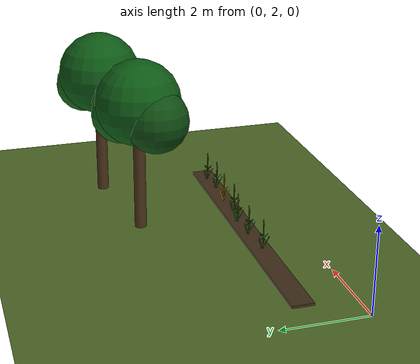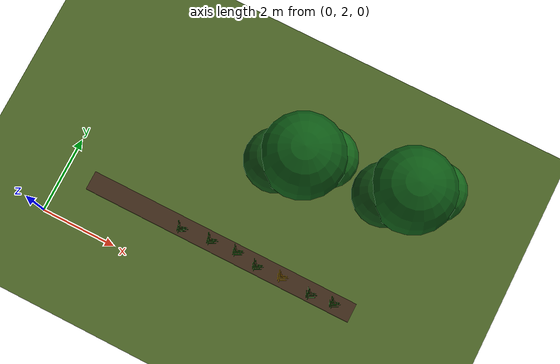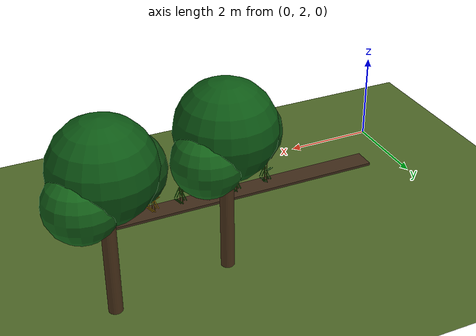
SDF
<sdf version="1.6">
 <world name="default">
  <model name="ground">
   <static>true</static>
   <link name="link">
    <collision name="col"><geometry><plane><normal>0 0 1</normal><size>40 40</size></plane></geometry></collision>
    <visual name="vis">
     <geometry><plane><normal>0 0 1</normal><size>40 40</size></plane></geometry>
     <material><ambient>0.30 0.40 0.15 1</ambient><diffuse>0.30 0.40 0.15 1</diffuse></material>
    </visual>
   </link>
  </model>
  <model name="bed_2b">
   <static>true</static>
   <pose>4.35 3.20 0.030 0 0 0.00</pose>
   <link name="link">
    <visual name="v">
     <geometry><box><size>7.30 0.50 0.060</size></box></geometry>
     <material><ambient>0.25 0.17 0.10 1</ambient><diffuse>0.25 0.17 0.10 1</diffuse></material>
    </visual>
   </link>
  </model>
  <model name="plant_34">
   <static>true</static>
   <pose>3.28 3.15 0 0 0 0</pose>
   <link name="link">
    <visual name="stem_0">
     <pose>0.000 0.000 0.320 0.000 0.000 0.000</pose>
     <geometry><cylinder><radius>0.01</radius><length>0.64</length></cylinder></geometry>
     <material><ambient>0.30 0.38 0.08 1</ambient><diffuse>0.30 0.38 0.08 1</diffuse></material>
    </visual>
    <visual name="leaf_0_0">
     <pose>0.055 0.045 0.130 0.000 0.700 0.150</pose>
     <geometry><cylinder><radius>0.009</radius><length>0.3</length></cylinder></geometry>
     <material><ambient>0.08 0.42 0.05 1</ambient><diffuse>0.08 0.42 0.05 1</diffuse></material>
    </visual>
    <visual name="leaf_0_1">
     <pose>-0.055 -0.045 0.230 0.000 -0.720 1.900</pose>
     <geometry><cylinder><radius>0.009</radius><length>0.28</length></cylinder></geometry>
     <material><ambient>0.08 0.42 0.05 1</ambient><diffuse>0.08 0.42 0.05 1</diffuse></material>
    </visual>
    <visual name="leaf_0_2">
     <pose>0.055 -0.045 0.320 0.000 0.780 3.700</pose>
     <geometry><cylinder><radius>0.009</radius><length>0.24</length></cylinder></geometry>
     <material><ambient>0.08 0.42 0.05 1</ambient><diffuse>0.08 0.42 0.05 1</diffuse></material>
    </visual>
    <visual name="leaf_0_3">
     <pose>-0.055 0.045 0.400 0.000 -0.800 5.200</pose>
     <geometry><cylinder><radius>0.009</radius><length>0.2</length></cylinder></geometry>
     <material><ambient>0.08 0.42 0.05 1</ambient><diffuse>0.08 0.42 0.05 1</diffuse></material>
    </visual>
    <visual name="stem_1">
     <pose>0.045 -0.025 0.265 0.000 0.000 0.000</pose>
     <geometry><cylinder><radius>0.008</radius><length>0.53</length></cylinder></geometry>
     <material><ambient>0.30 0.38 0.08 1</ambient><diffuse>0.30 0.38 0.08 1</diffuse></material>
    </visual>
    <visual name="leaf_1_0">
     <pose>0.100 0.020 0.130 0.000 0.700 0.150</pose>
     <geometry><cylinder><radius>0.009</radius><length>0.3</length></cylinder></geometry>
     <material><ambient>0.08 0.42 0.05 1</ambient><diffuse>0.08 0.42 0.05 1</diffuse></material>
    </visual>
    <visual name="leaf_1_1">
     <pose>-0.010 -0.070 0.230 0.000 -0.720 1.900</pose>
     <geometry><cylinder><radius>0.009</radius><length>0.28</length></cylinder></geometry>
     <material><ambient>0.08 0.42 0.05 1</ambient><diffuse>0.08 0.42 0.05 1</diffuse></material>
    </visual>
    <visual name="leaf_1_2">
     <pose>0.100 -0.070 0.320 0.000 0.780 3.700</pose>
     <geometry><cylinder><radius>0.009</radius><length>0.24</length></cylinder></geometry>
     <material><ambient>0.08 0.42 0.05 1</ambient><diffuse>0.08 0.42 0.05 1</diffuse></material>
    </visual>
    <visual name="leaf_1_3">
     <pose>-0.010 0.020 0.400 0.000 -0.800 5.200</pose>
     <geometry><cylinder><radius>0.009</radius><length>0.2</length></cylinder></geometry>
     <material><ambient>0.08 0.42 0.05 1</ambient><diffuse>0.08 0.42 0.05 1</diffuse></material>
    </visual>
    <visual name="ear_axis_0">
     <pose>0.000 0.000 0.715 0.000 0.000 0.000</pose>
     <geometry><cylinder><radius>0.010</radius><length>0.13</length></cylinder></geometry>
     <material><ambient>0.48 0.36 0.22 1</ambient><diffuse>0.48 0.36 0.22 1</diffuse></material>
    </visual>
    <visual name="grain_0_0">
     <pose>0.012 -0.006 0.675 0.000 0.000 0.000</pose>
     <geometry><sphere><radius>0.012</radius></sphere></geometry>
     <material><ambient>0.48 0.36 0.22 1</ambient><diffuse>0.48 0.36 0.22 1</diffuse></material>
    </visual>
    <visual name="grain_0_1">
     <pose>-0.014 0.006 0.691 0.000 0.000 0.000</pose>
     <geometry><sphere><radius>0.012</radius></sphere></geometry>
     <material><ambient>0.48 0.36 0.22 1</ambient><diffuse>0.48 0.36 0.22 1</diffuse></material>
    </visual>
    <visual name="grain_0_2">
     <pose>0.016 -0.006 0.707 0.000 0.000 0.000</pose>
     <geometry><sphere><radius>0.012</radius></sphere></geometry>
     <material><ambient>0.48 0.36 0.22 1</ambient><diffuse>0.48 0.36 0.22 1</diffuse></material>
    </visual>
    <visual name="grain_0_3">
     <pose>-0.012 0.006 0.723 0.000 0.000 0.000</pose>
     <geometry><sphere><radius>0.012</radius></sphere></geometry>
     <material><ambient>0.48 0.36 0.22 1</ambient><diffuse>0.48 0.36 0.22 1</diffuse></material>
    </visual>
    <visual name="grain_0_4">
     <pose>0.014 -0.006 0.739 0.000 0.000 0.000</pose>
     <geometry><sphere><radius>0.012</radius></sphere></geometry>
     <material><ambient>0.48 0.36 0.22 1</ambient><diffuse>0.48 0.36 0.22 1</diffuse></material>
    </visual>
    <visual name="grain_0_5">
     <pose>-0.016 0.006 0.755 0.000 0.000 0.000</pose>
     <geometry><sphere><radius>0.012</radius></sphere></geometry>
     <material><ambient>0.48 0.36 0.22 1</ambient><diffuse>0.48 0.36 0.22 1</diffuse></material>
    </visual>
    <visual name="ear_axis_1">
     <pose>0.045 -0.025 0.605 0.000 0.000 0.000</pose>
     <geometry><cylinder><radius>0.010</radius><length>0.13</length></cylinder></geometry>
     <material><ambient>0.48 0.36 0.22 1</ambient><diffuse>0.48 0.36 0.22 1</diffuse></material>
    </visual>
    <visual name="grain_1_0">
     <pose>0.057 -0.031 0.565 0.000 0.000 0.000</pose>
     <geometry><sphere><radius>0.012</radius></sphere></geometry>
     <material><ambient>0.48 0.36 0.22 1</ambient><diffuse>0.48 0.36 0.22 1</diffuse></material>
    </visual>
    <visual name="grain_1_1">
     <pose>0.031 -0.019 0.581 0.000 0.000 0.000</pose>
     <geometry><sphere><radius>0.012</radius></sphere></geometry>
     <material><ambient>0.48 0.36 0.22 1</ambient><diffuse>0.48 0.36 0.22 1</diffuse></material>
    </visual>
    <visual name="grain_1_2">
     <pose>0.061 -0.031 0.597 0.000 0.000 0.000</pose>
     <geometry><sphere><radius>0.012</radius></sphere></geometry>
     <material><ambient>0.48 0.36 0.22 1</ambient><diffuse>0.48 0.36 0.22 1</diffuse></material>
    </visual>
    <visual name="grain_1_3">
     <pose>0.033 -0.019 0.613 0.000 0.000 0.000</pose>
     <geometry><sphere><radius>0.012</radius></sphere></geometry>
     <material><ambient>0.48 0.36 0.22 1</ambient><diffuse>0.48 0.36 0.22 1</diffuse></material>
    </visual>
    <visual name="grain_1_4">
     <pose>0.059 -0.031 0.629 0.000 0.000 0.000</pose>
     <geometry><sphere><radius>0.012</radius></sphere></geometry>
     <material><ambient>0.48 0.36 0.22 1</ambient><diffuse>0.48 0.36 0.22 1</diffuse></material>
    </visual>
    <visual name="grain_1_5">
     <pose>0.029 -0.019 0.645 0.000 0.000 0.000</pose>
     <geometry><sphere><radius>0.012</radius></sphere></geometry>
     <material><ambient>0.48 0.36 0.22 1</ambient><diffuse>0.48 0.36 0.22 1</diffuse></material>
    </visual>
   </link>
  </model>
  <model name="plant_35">
   <static>true</static>
   <pose>4.07 3.22 0 0 0 0</pose>
   <link name="link">
    <visual name="stem_0">
     <pose>0.000 0.000 0.320 0.000 0.000 0.000</pose>
     <geometry><cylinder><radius>0.01</radius><length>0.64</length></cylinder></geometry>
     <material><ambient>0.30 0.38 0.08 1</ambient><diffuse>0.30 0.38 0.08 1</diffuse></material>
    </visual>
    <visual name="leaf_0_0">
     <pose>0.055 0.045 0.130 0.000 0.700 0.150</pose>
     <geometry><cylinder><radius>0.009</radius><length>0.3</length></cylinder></geometry>
     <material><ambient>0.10 0.48 0.06 1</ambient><diffuse>0.10 0.48 0.06 1</diffuse></material>
    </visual>
    <visual name="leaf_0_1">
     <pose>-0.055 -0.045 0.230 0.000 -0.720 1.900</pose>
     <geometry><cylinder><radius>0.009</radius><length>0.28</length></cylinder></geometry>
     <material><ambient>0.10 0.48 0.06 1</ambient><diffuse>0.10 0.48 0.06 1</diffuse></material>
    </visual>
    <visual name="leaf_0_2">
     <pose>0.055 -0.045 0.320 0.000 0.780 3.700</pose>
     <geometry><cylinder><radius>0.009</radius><length>0.24</length></cylinder></geometry>
     <material><ambient>0.10 0.48 0.06 1</ambient><diffuse>0.10 0.48 0.06 1</diffuse></material>
    </visual>
    <visual name="leaf_0_3">
     <pose>-0.055 0.045 0.400 0.000 -0.800 5.200</pose>
     <geometry><cylinder><radius>0.009</radius><length>0.2</length></cylinder></geometry>
     <material><ambient>0.10 0.48 0.06 1</ambient><diffuse>0.10 0.48 0.06 1</diffuse></material>
    </visual>
    <visual name="stem_1">
     <pose>0.045 -0.025 0.265 0.000 0.000 0.000</pose>
     <geometry><cylinder><radius>0.008</radius><length>0.53</length></cylinder></geometry>
     <material><ambient>0.30 0.38 0.08 1</ambient><diffuse>0.30 0.38 0.08 1</diffuse></material>
    </visual>
    <visual name="leaf_1_0">
     <pose>0.100 0.020 0.130 0.000 0.700 0.150</pose>
     <geometry><cylinder><radius>0.009</radius><length>0.3</length></cylinder></geometry>
     <material><ambient>0.10 0.48 0.06 1</ambient><diffuse>0.10 0.48 0.06 1</diffuse></material>
    </visual>
    <visual name="leaf_1_1">
     <pose>-0.010 -0.070 0.230 0.000 -0.720 1.900</pose>
     <geometry><cylinder><radius>0.009</radius><length>0.28</length></cylinder></geometry>
     <material><ambient>0.10 0.48 0.06 1</ambient><diffuse>0.10 0.48 0.06 1</diffuse></material>
    </visual>
    <visual name="leaf_1_2">
     <pose>0.100 -0.070 0.320 0.000 0.780 3.700</pose>
     <geometry><cylinder><radius>0.009</radius><length>0.24</length></cylinder></geometry>
     <material><ambient>0.10 0.48 0.06 1</ambient><diffuse>0.10 0.48 0.06 1</diffuse></material>
    </visual>
    <visual name="leaf_1_3">
     <pose>-0.010 0.020 0.400 0.000 -0.800 5.200</pose>
     <geometry><cylinder><radius>0.009</radius><length>0.2</length></cylinder></geometry>
     <material><ambient>0.10 0.48 0.06 1</ambient><diffuse>0.10 0.48 0.06 1</diffuse></material>
    </visual>
    <visual name="ear_axis_0">
     <pose>0.000 0.000 0.715 0.000 0.000 0.000</pose>
     <geometry><cylinder><radius>0.010</radius><length>0.13</length></cylinder></geometry>
     <material><ambient>0.52 0.40 0.25 1</ambient><diffuse>0.52 0.40 0.25 1</diffuse></material>
    </visual>
    <visual name="grain_0_0">
     <pose>0.012 -0.006 0.675 0.000 0.000 0.000</pose>
     <geometry><sphere><radius>0.012</radius></sphere></geometry>
     <material><ambient>0.52 0.40 0.25 1</ambient><diffuse>0.52 0.40 0.25 1</diffuse></material>
    </visual>
    <visual name="grain_0_1">
     <pose>-0.014 0.006 0.691 0.000 0.000 0.000</pose>
     <geometry><sphere><radius>0.012</radius></sphere></geometry>
     <material><ambient>0.52 0.40 0.25 1</ambient><diffuse>0.52 0.40 0.25 1</diffuse></material>
    </visual>
    <visual name="grain_0_2">
     <pose>0.016 -0.006 0.707 0.000 0.000 0.000</pose>
     <geometry><sphere><radius>0.012</radius></sphere></geometry>
     <material><ambient>0.52 0.40 0.25 1</ambient><diffuse>0.52 0.40 0.25 1</diffuse></material>
    </visual>
    <visual name="grain_0_3">
     <pose>-0.012 0.006 0.723 0.000 0.000 0.000</pose>
     <geometry><sphere><radius>0.012</radius></sphere></geometry>
     <material><ambient>0.52 0.40 0.25 1</ambient><diffuse>0.52 0.40 0.25 1</diffuse></material>
    </visual>
    <visual name="grain_0_4">
     <pose>0.014 -0.006 0.739 0.000 0.000 0.000</pose>
     <geometry><sphere><radius>0.012</radius></sphere></geometry>
     <material><ambient>0.52 0.40 0.25 1</ambient><diffuse>0.52 0.40 0.25 1</diffuse></material>
    </visual>
    <visual name="grain_0_5">
     <pose>-0.016 0.006 0.755 0.000 0.000 0.000</pose>
     <geometry><sphere><radius>0.012</radius></sphere></geometry>
     <material><ambient>0.52 0.40 0.25 1</ambient><diffuse>0.52 0.40 0.25 1</diffuse></material>
    </visual>
    <visual name="ear_axis_1">
     <pose>0.045 -0.025 0.605 0.000 0.000 0.000</pose>
     <geometry><cylinder><radius>0.010</radius><length>0.13</length></cylinder></geometry>
     <material><ambient>0.52 0.40 0.25 1</ambient><diffuse>0.52 0.40 0.25 1</diffuse></material>
    </visual>
    <visual name="grain_1_0">
     <pose>0.057 -0.031 0.565 0.000 0.000 0.000</pose>
     <geometry><sphere><radius>0.012</radius></sphere></geometry>
     <material><ambient>0.52 0.40 0.25 1</ambient><diffuse>0.52 0.40 0.25 1</diffuse></material>
    </visual>
    <visual name="grain_1_1">
     <pose>0.031 -0.019 0.581 0.000 0.000 0.000</pose>
     <geometry><sphere><radius>0.012</radius></sphere></geometry>
     <material><ambient>0.52 0.40 0.25 1</ambient><diffuse>0.52 0.40 0.25 1</diffuse></material>
    </visual>
    <visual name="grain_1_2">
     <pose>0.061 -0.031 0.597 0.000 0.000 0.000</pose>
     <geometry><sphere><radius>0.012</radius></sphere></geometry>
     <material><ambient>0.52 0.40 0.25 1</ambient><diffuse>0.52 0.40 0.25 1</diffuse></material>
    </visual>
    <visual name="grain_1_3">
     <pose>0.033 -0.019 0.613 0.000 0.000 0.000</pose>
     <geometry><sphere><radius>0.012</radius></sphere></geometry>
     <material><ambient>0.52 0.40 0.25 1</ambient><diffuse>0.52 0.40 0.25 1</diffuse></material>
    </visual>
    <visual name="grain_1_4">
     <pose>0.059 -0.031 0.629 0.000 0.000 0.000</pose>
     <geometry><sphere><radius>0.012</radius></sphere></geometry>
     <material><ambient>0.52 0.40 0.25 1</ambient><diffuse>0.52 0.40 0.25 1</diffuse></material>
    </visual>
    <visual name="grain_1_5">
     <pose>0.029 -0.019 0.645 0.000 0.000 0.000</pose>
     <geometry><sphere><radius>0.012</radius></sphere></geometry>
     <material><ambient>0.52 0.40 0.25 1</ambient><diffuse>0.52 0.40 0.25 1</diffuse></material>
    </visual>
   </link>
  </model>
  <model name="plant_36">
   <static>true</static>
   <pose>4.77 3.26 0 0 0 0</pose>
   <link name="link">
    <visual name="stem_0">
     <pose>0.000 0.000 0.320 0.000 0.000 0.000</pose>
     <geometry><cylinder><radius>0.01</radius><length>0.64</length></cylinder></geometry>
     <material><ambient>0.30 0.38 0.08 1</ambient><diffuse>0.30 0.38 0.08 1</diffuse></material>
    </visual>
    <visual name="leaf_0_0">
     <pose>0.055 0.045 0.130 0.000 0.700 0.150</pose>
     <geometry><cylinder><radius>0.009</radius><length>0.3</length></cylinder></geometry>
     <material><ambient>0.12 0.55 0.08 1</ambient><diffuse>0.12 0.55 0.08 1</diffuse></material>
    </visual>
    <visual name="leaf_0_1">
     <pose>-0.055 -0.045 0.230 0.000 -0.720 1.900</pose>
     <geometry><cylinder><radius>0.009</radius><length>0.28</length></cylinder></geometry>
     <material><ambient>0.12 0.55 0.08 1</ambient><diffuse>0.12 0.55 0.08 1</diffuse></material>
    </visual>
    <visual name="leaf_0_2">
     <pose>0.055 -0.045 0.320 0.000 0.780 3.700</pose>
     <geometry><cylinder><radius>0.009</radius><length>0.24</length></cylinder></geometry>
     <material><ambient>0.12 0.55 0.08 1</ambient><diffuse>0.12 0.55 0.08 1</diffuse></material>
    </visual>
    <visual name="leaf_0_3">
     <pose>-0.055 0.045 0.400 0.000 -0.800 5.200</pose>
     <geometry><cylinder><radius>0.009</radius><length>0.2</length></cylinder></geometry>
     <material><ambient>0.12 0.55 0.08 1</ambient><diffuse>0.12 0.55 0.08 1</diffuse></material>
    </visual>
    <visual name="stem_1">
     <pose>0.045 -0.025 0.265 0.000 0.000 0.000</pose>
     <geometry><cylinder><radius>0.008</radius><length>0.53</length></cylinder></geometry>
     <material><ambient>0.30 0.38 0.08 1</ambient><diffuse>0.30 0.38 0.08 1</diffuse></material>
    </visual>
    <visual name="leaf_1_0">
     <pose>0.100 0.020 0.130 0.000 0.700 0.150</pose>
     <geometry><cylinder><radius>0.009</radius><length>0.3</length></cylinder></geometry>
     <material><ambient>0.12 0.55 0.08 1</ambient><diffuse>0.12 0.55 0.08 1</diffuse></material>
    </visual>
    <visual name="leaf_1_1">
     <pose>-0.010 -0.070 0.230 0.000 -0.720 1.900</pose>
     <geometry><cylinder><radius>0.009</radius><length>0.28</length></cylinder></geometry>
     <material><ambient>0.12 0.55 0.08 1</ambient><diffuse>0.12 0.55 0.08 1</diffuse></material>
    </visual>
    <visual name="leaf_1_2">
     <pose>0.100 -0.070 0.320 0.000 0.780 3.700</pose>
     <geometry><cylinder><radius>0.009</radius><length>0.24</length></cylinder></geometry>
     <material><ambient>0.12 0.55 0.08 1</ambient><diffuse>0.12 0.55 0.08 1</diffuse></material>
    </visual>
    <visual name="leaf_1_3">
     <pose>-0.010 0.020 0.400 0.000 -0.800 5.200</pose>
     <geometry><cylinder><radius>0.009</radius><length>0.2</length></cylinder></geometry>
     <material><ambient>0.12 0.55 0.08 1</ambient><diffuse>0.12 0.55 0.08 1</diffuse></material>
    </visual>
    <visual name="ear_axis_0">
     <pose>0.000 0.000 0.715 0.000 0.000 0.000</pose>
     <geometry><cylinder><radius>0.010</radius><length>0.13</length></cylinder></geometry>
     <material><ambient>0.56 0.43 0.26 1</ambient><diffuse>0.56 0.43 0.26 1</diffuse></material>
    </visual>
    <visual name="grain_0_0">
     <pose>0.012 -0.006 0.675 0.000 0.000 0.000</pose>
     <geometry><sphere><radius>0.012</radius></sphere></geometry>
     <material><ambient>0.56 0.43 0.26 1</ambient><diffuse>0.56 0.43 0.26 1</diffuse></material>
    </visual>
    <visual name="grain_0_1">
     <pose>-0.014 0.006 0.691 0.000 0.000 0.000</pose>
     <geometry><sphere><radius>0.012</radius></sphere></geometry>
     <material><ambient>0.56 0.43 0.26 1</ambient><diffuse>0.56 0.43 0.26 1</diffuse></material>
    </visual>
    <visual name="grain_0_2">
     <pose>0.016 -0.006 0.707 0.000 0.000 0.000</pose>
     <geometry><sphere><radius>0.012</radius></sphere></geometry>
     <material><ambient>0.56 0.43 0.26 1</ambient><diffuse>0.56 0.43 0.26 1</diffuse></material>
    </visual>
    <visual name="grain_0_3">
     <pose>-0.012 0.006 0.723 0.000 0.000 0.000</pose>
     <geometry><sphere><radius>0.012</radius></sphere></geometry>
     <material><ambient>0.56 0.43 0.26 1</ambient><diffuse>0.56 0.43 0.26 1</diffuse></material>
    </visual>
    <visual name="grain_0_4">
     <pose>0.014 -0.006 0.739 0.000 0.000 0.000</pose>
     <geometry><sphere><radius>0.012</radius></sphere></geometry>
     <material><ambient>0.56 0.43 0.26 1</ambient><diffuse>0.56 0.43 0.26 1</diffuse></material>
    </visual>
    <visual name="grain_0_5">
     <pose>-0.016 0.006 0.755 0.000 0.000 0.000</pose>
     <geometry><sphere><radius>0.012</radius></sphere></geometry>
     <material><ambient>0.56 0.43 0.26 1</ambient><diffuse>0.56 0.43 0.26 1</diffuse></material>
    </visual>
    <visual name="ear_axis_1">
     <pose>0.045 -0.025 0.605 0.000 0.000 0.000</pose>
     <geometry><cylinder><radius>0.010</radius><length>0.13</length></cylinder></geometry>
     <material><ambient>0.56 0.43 0.26 1</ambient><diffuse>0.56 0.43 0.26 1</diffuse></material>
    </visual>
    <visual name="grain_1_0">
     <pose>0.057 -0.031 0.565 0.000 0.000 0.000</pose>
     <geometry><sphere><radius>0.012</radius></sphere></geometry>
     <material><ambient>0.56 0.43 0.26 1</ambient><diffuse>0.56 0.43 0.26 1</diffuse></material>
    </visual>
    <visual name="grain_1_1">
     <pose>0.031 -0.019 0.581 0.000 0.000 0.000</pose>
     <geometry><sphere><radius>0.012</radius></sphere></geometry>
     <material><ambient>0.56 0.43 0.26 1</ambient><diffuse>0.56 0.43 0.26 1</diffuse></material>
    </visual>
    <visual name="grain_1_2">
     <pose>0.061 -0.031 0.597 0.000 0.000 0.000</pose>
     <geometry><sphere><radius>0.012</radius></sphere></geometry>
     <material><ambient>0.56 0.43 0.26 1</ambient><diffuse>0.56 0.43 0.26 1</diffuse></material>
    </visual>
    <visual name="grain_1_3">
     <pose>0.033 -0.019 0.613 0.000 0.000 0.000</pose>
     <geometry><sphere><radius>0.012</radius></sphere></geometry>
     <material><ambient>0.56 0.43 0.26 1</ambient><diffuse>0.56 0.43 0.26 1</diffuse></material>
    </visual>
    <visual name="grain_1_4">
     <pose>0.059 -0.031 0.629 0.000 0.000 0.000</pose>
     <geometry><sphere><radius>0.012</radius></sphere></geometry>
     <material><ambient>0.56 0.43 0.26 1</ambient><diffuse>0.56 0.43 0.26 1</diffuse></material>
    </visual>
    <visual name="grain_1_5">
     <pose>0.029 -0.019 0.645 0.000 0.000 0.000</pose>
     <geometry><sphere><radius>0.012</radius></sphere></geometry>
     <material><ambient>0.56 0.43 0.26 1</ambient><diffuse>0.56 0.43 0.26 1</diffuse></material>
    </visual>
   </link>
  </model>
  <model name="plant_37">
   <static>true</static>
   <pose>5.36 3.16 0 0 0 0</pose>
   <link name="link">
    <visual name="stem_0">
     <pose>0.000 0.000 0.320 0.000 0.000 0.000</pose>
     <geometry><cylinder><radius>0.01</radius><length>0.64</length></cylinder></geometry>
     <material><ambient>0.30 0.38 0.08 1</ambient><diffuse>0.30 0.38 0.08 1</diffuse></material>
    </visual>
    <visual name="leaf_0_0">
     <pose>0.055 0.045 0.130 0.000 0.700 0.150</pose>
     <geometry><cylinder><radius>0.009</radius><length>0.3</length></cylinder></geometry>
     <material><ambient>0.10 0.48 0.06 1</ambient><diffuse>0.10 0.48 0.06 1</diffuse></material>
    </visual>
    <visual name="leaf_0_1">
     <pose>-0.055 -0.045 0.230 0.000 -0.720 1.900</pose>
     <geometry><cylinder><radius>0.009</radius><length>0.28</length></cylinder></geometry>
     <material><ambient>0.10 0.48 0.06 1</ambient><diffuse>0.10 0.48 0.06 1</diffuse></material>
    </visual>
    <visual name="leaf_0_2">
     <pose>0.055 -0.045 0.320 0.000 0.780 3.700</pose>
     <geometry><cylinder><radius>0.009</radius><length>0.24</length></cylinder></geometry>
     <material><ambient>0.10 0.48 0.06 1</ambient><diffuse>0.10 0.48 0.06 1</diffuse></material>
    </visual>
    <visual name="leaf_0_3">
     <pose>-0.055 0.045 0.400 0.000 -0.800 5.200</pose>
     <geometry><cylinder><radius>0.009</radius><length>0.2</length></cylinder></geometry>
     <material><ambient>0.10 0.48 0.06 1</ambient><diffuse>0.10 0.48 0.06 1</diffuse></material>
    </visual>
    <visual name="stem_1">
     <pose>0.045 -0.025 0.265 0.000 0.000 0.000</pose>
     <geometry><cylinder><radius>0.008</radius><length>0.53</length></cylinder></geometry>
     <material><ambient>0.30 0.38 0.08 1</ambient><diffuse>0.30 0.38 0.08 1</diffuse></material>
    </visual>
    <visual name="leaf_1_0">
     <pose>0.100 0.020 0.130 0.000 0.700 0.150</pose>
     <geometry><cylinder><radius>0.009</radius><length>0.3</length></cylinder></geometry>
     <material><ambient>0.10 0.48 0.06 1</ambient><diffuse>0.10 0.48 0.06 1</diffuse></material>
    </visual>
    <visual name="leaf_1_1">
     <pose>-0.010 -0.070 0.230 0.000 -0.720 1.900</pose>
     <geometry><cylinder><radius>0.009</radius><length>0.28</length></cylinder></geometry>
     <material><ambient>0.10 0.48 0.06 1</ambient><diffuse>0.10 0.48 0.06 1</diffuse></material>
    </visual>
    <visual name="leaf_1_2">
     <pose>0.100 -0.070 0.320 0.000 0.780 3.700</pose>
     <geometry><cylinder><radius>0.009</radius><length>0.24</length></cylinder></geometry>
     <material><ambient>0.10 0.48 0.06 1</ambient><diffuse>0.10 0.48 0.06 1</diffuse></material>
    </visual>
    <visual name="leaf_1_3">
     <pose>-0.010 0.020 0.400 0.000 -0.800 5.200</pose>
     <geometry><cylinder><radius>0.009</radius><length>0.2</length></cylinder></geometry>
     <material><ambient>0.10 0.48 0.06 1</ambient><diffuse>0.10 0.48 0.06 1</diffuse></material>
    </visual>
    <visual name="ear_axis_0">
     <pose>0.000 0.000 0.715 0.000 0.000 0.000</pose>
     <geometry><cylinder><radius>0.010</radius><length>0.13</length></cylinder></geometry>
     <material><ambient>0.52 0.40 0.25 1</ambient><diffuse>0.52 0.40 0.25 1</diffuse></material>
    </visual>
    <visual name="grain_0_0">
     <pose>0.012 -0.006 0.675 0.000 0.000 0.000</pose>
     <geometry><sphere><radius>0.012</radius></sphere></geometry>
     <material><ambient>0.52 0.40 0.25 1</ambient><diffuse>0.52 0.40 0.25 1</diffuse></material>
    </visual>
    <visual name="grain_0_1">
     <pose>-0.014 0.006 0.691 0.000 0.000 0.000</pose>
     <geometry><sphere><radius>0.012</radius></sphere></geometry>
     <material><ambient>0.52 0.40 0.25 1</ambient><diffuse>0.52 0.40 0.25 1</diffuse></material>
    </visual>
    <visual name="grain_0_2">
     <pose>0.016 -0.006 0.707 0.000 0.000 0.000</pose>
     <geometry><sphere><radius>0.012</radius></sphere></geometry>
     <material><ambient>0.52 0.40 0.25 1</ambient><diffuse>0.52 0.40 0.25 1</diffuse></material>
    </visual>
    <visual name="grain_0_3">
     <pose>-0.012 0.006 0.723 0.000 0.000 0.000</pose>
     <geometry><sphere><radius>0.012</radius></sphere></geometry>
     <material><ambient>0.52 0.40 0.25 1</ambient><diffuse>0.52 0.40 0.25 1</diffuse></material>
    </visual>
    <visual name="grain_0_4">
     <pose>0.014 -0.006 0.739 0.000 0.000 0.000</pose>
     <geometry><sphere><radius>0.012</radius></sphere></geometry>
     <material><ambient>0.52 0.40 0.25 1</ambient><diffuse>0.52 0.40 0.25 1</diffuse></material>
    </visual>
    <visual name="grain_0_5">
     <pose>-0.016 0.006 0.755 0.000 0.000 0.000</pose>
     <geometry><sphere><radius>0.012</radius></sphere></geometry>
     <material><ambient>0.52 0.40 0.25 1</ambient><diffuse>0.52 0.40 0.25 1</diffuse></material>
    </visual>
    <visual name="ear_axis_1">
     <pose>0.045 -0.025 0.605 0.000 0.000 0.000</pose>
     <geometry><cylinder><radius>0.010</radius><length>0.13</length></cylinder></geometry>
     <material><ambient>0.52 0.40 0.25 1</ambient><diffuse>0.52 0.40 0.25 1</diffuse></material>
    </visual>
    <visual name="grain_1_0">
     <pose>0.057 -0.031 0.565 0.000 0.000 0.000</pose>
     <geometry><sphere><radius>0.012</radius></sphere></geometry>
     <material><ambient>0.52 0.40 0.25 1</ambient><diffuse>0.52 0.40 0.25 1</diffuse></material>
    </visual>
    <visual name="grain_1_1">
     <pose>0.031 -0.019 0.581 0.000 0.000 0.000</pose>
     <geometry><sphere><radius>0.012</radius></sphere></geometry>
     <material><ambient>0.52 0.40 0.25 1</ambient><diffuse>0.52 0.40 0.25 1</diffuse></material>
    </visual>
    <visual name="grain_1_2">
     <pose>0.061 -0.031 0.597 0.000 0.000 0.000</pose>
     <geometry><sphere><radius>0.012</radius></sphere></geometry>
     <material><ambient>0.52 0.40 0.25 1</ambient><diffuse>0.52 0.40 0.25 1</diffuse></material>
    </visual>
    <visual name="grain_1_3">
     <pose>0.033 -0.019 0.613 0.000 0.000 0.000</pose>
     <geometry><sphere><radius>0.012</radius></sphere></geometry>
     <material><ambient>0.52 0.40 0.25 1</ambient><diffuse>0.52 0.40 0.25 1</diffuse></material>
    </visual>
    <visual name="grain_1_4">
     <pose>0.059 -0.031 0.629 0.000 0.000 0.000</pose>
     <geometry><sphere><radius>0.012</radius></sphere></geometry>
     <material><ambient>0.52 0.40 0.25 1</ambient><diffuse>0.52 0.40 0.25 1</diffuse></material>
    </visual>
    <visual name="grain_1_5">
     <pose>0.029 -0.019 0.645 0.000 0.000 0.000</pose>
     <geometry><sphere><radius>0.012</radius></sphere></geometry>
     <material><ambient>0.52 0.40 0.25 1</ambient><diffuse>0.52 0.40 0.25 1</diffuse></material>
    </visual>
   </link>
  </model>
  <model name="plant_38">
   <static>true</static>
   <pose>6.03 3.20 0 0 0 0</pose>
   <link name="link">
    <visual name="stem_0">
     <pose>0.000 0.000 0.320 0.000 0.000 0.000</pose>
     <geometry><cylinder><radius>0.01</radius><length>0.64</length></cylinder></geometry>
     <material><ambient>0.55 0.42 0.08 1</ambient><diffuse>0.55 0.42 0.08 1</diffuse></material>
    </visual>
    <visual name="leaf_0_0">
     <pose>0.055 0.045 0.130 0.000 0.700 0.150</pose>
     <geometry><cylinder><radius>0.009</radius><length>0.3</length></cylinder></geometry>
     <material><ambient>0.95 0.73 0.06 1</ambient><diffuse>0.95 0.73 0.06 1</diffuse></material>
    </visual>
    <visual name="leaf_0_1">
     <pose>-0.055 -0.045 0.230 0.000 -0.720 1.900</pose>
     <geometry><cylinder><radius>0.009</radius><length>0.28</length></cylinder></geometry>
     <material><ambient>0.95 0.73 0.06 1</ambient><diffuse>0.95 0.73 0.06 1</diffuse></material>
    </visual>
    <visual name="leaf_0_2">
     <pose>0.055 -0.045 0.320 0.000 0.780 3.700</pose>
     <geometry><cylinder><radius>0.009</radius><length>0.24</length></cylinder></geometry>
     <material><ambient>0.95 0.73 0.06 1</ambient><diffuse>0.95 0.73 0.06 1</diffuse></material>
    </visual>
    <visual name="leaf_0_3">
     <pose>-0.055 0.045 0.400 0.000 -0.800 5.200</pose>
     <geometry><cylinder><radius>0.009</radius><length>0.2</length></cylinder></geometry>
     <material><ambient>0.95 0.73 0.06 1</ambient><diffuse>0.95 0.73 0.06 1</diffuse></material>
    </visual>
    <visual name="stem_1">
     <pose>0.045 -0.025 0.265 0.000 0.000 0.000</pose>
     <geometry><cylinder><radius>0.008</radius><length>0.53</length></cylinder></geometry>
     <material><ambient>0.55 0.42 0.08 1</ambient><diffuse>0.55 0.42 0.08 1</diffuse></material>
    </visual>
    <visual name="leaf_1_0">
     <pose>0.100 0.020 0.130 0.000 0.700 0.150</pose>
     <geometry><cylinder><radius>0.009</radius><length>0.3</length></cylinder></geometry>
     <material><ambient>0.95 0.73 0.06 1</ambient><diffuse>0.95 0.73 0.06 1</diffuse></material>
    </visual>
    <visual name="leaf_1_1">
     <pose>-0.010 -0.070 0.230 0.000 -0.720 1.900</pose>
     <geometry><cylinder><radius>0.009</radius><length>0.28</length></cylinder></geometry>
     <material><ambient>0.95 0.73 0.06 1</ambient><diffuse>0.95 0.73 0.06 1</diffuse></material>
    </visual>
    <visual name="leaf_1_2">
     <pose>0.100 -0.070 0.320 0.000 0.780 3.700</pose>
     <geometry><cylinder><radius>0.009</radius><length>0.24</length></cylinder></geometry>
     <material><ambient>0.95 0.73 0.06 1</ambient><diffuse>0.95 0.73 0.06 1</diffuse></material>
    </visual>
    <visual name="leaf_1_3">
     <pose>-0.010 0.020 0.400 0.000 -0.800 5.200</pose>
     <geometry><cylinder><radius>0.009</radius><length>0.2</length></cylinder></geometry>
     <material><ambient>0.95 0.73 0.06 1</ambient><diffuse>0.95 0.73 0.06 1</diffuse></material>
    </visual>
    <visual name="ear_axis_0">
     <pose>0.000 0.000 0.715 0.000 0.000 0.000</pose>
     <geometry><cylinder><radius>0.010</radius><length>0.13</length></cylinder></geometry>
     <material><ambient>0.72 0.45 0.08 1</ambient><diffuse>0.72 0.45 0.08 1</diffuse></material>
    </visual>
    <visual name="grain_0_0">
     <pose>0.012 -0.006 0.675 0.000 0.000 0.000</pose>
     <geometry><sphere><radius>0.012</radius></sphere></geometry>
     <material><ambient>0.72 0.45 0.08 1</ambient><diffuse>0.72 0.45 0.08 1</diffuse></material>
    </visual>
    <visual name="grain_0_1">
     <pose>-0.014 0.006 0.691 0.000 0.000 0.000</pose>
     <geometry><sphere><radius>0.012</radius></sphere></geometry>
     <material><ambient>0.72 0.45 0.08 1</ambient><diffuse>0.72 0.45 0.08 1</diffuse></material>
    </visual>
    <visual name="grain_0_2">
     <pose>0.016 -0.006 0.707 0.000 0.000 0.000</pose>
     <geometry><sphere><radius>0.012</radius></sphere></geometry>
     <material><ambient>0.72 0.45 0.08 1</ambient><diffuse>0.72 0.45 0.08 1</diffuse></material>
    </visual>
    <visual name="grain_0_3">
     <pose>-0.012 0.006 0.723 0.000 0.000 0.000</pose>
     <geometry><sphere><radius>0.012</radius></sphere></geometry>
     <material><ambient>0.72 0.45 0.08 1</ambient><diffuse>0.72 0.45 0.08 1</diffuse></material>
    </visual>
    <visual name="grain_0_4">
     <pose>0.014 -0.006 0.739 0.000 0.000 0.000</pose>
     <geometry><sphere><radius>0.012</radius></sphere></geometry>
     <material><ambient>0.72 0.45 0.08 1</ambient><diffuse>0.72 0.45 0.08 1</diffuse></material>
    </visual>
    <visual name="grain_0_5">
     <pose>-0.016 0.006 0.755 0.000 0.000 0.000</pose>
     <geometry><sphere><radius>0.012</radius></sphere></geometry>
     <material><ambient>0.72 0.45 0.08 1</ambient><diffuse>0.72 0.45 0.08 1</diffuse></material>
    </visual>
    <visual name="ear_axis_1">
     <pose>0.045 -0.025 0.605 0.000 0.000 0.000</pose>
     <geometry><cylinder><radius>0.010</radius><length>0.13</length></cylinder></geometry>
     <material><ambient>0.72 0.45 0.08 1</ambient><diffuse>0.72 0.45 0.08 1</diffuse></material>
    </visual>
    <visual name="grain_1_0">
     <pose>0.057 -0.031 0.565 0.000 0.000 0.000</pose>
     <geometry><sphere><radius>0.012</radius></sphere></geometry>
     <material><ambient>0.72 0.45 0.08 1</ambient><diffuse>0.72 0.45 0.08 1</diffuse></material>
    </visual>
    <visual name="grain_1_1">
     <pose>0.031 -0.019 0.581 0.000 0.000 0.000</pose>
     <geometry><sphere><radius>0.012</radius></sphere></geometry>
     <material><ambient>0.72 0.45 0.08 1</ambient><diffuse>0.72 0.45 0.08 1</diffuse></material>
    </visual>
    <visual name="grain_1_2">
     <pose>0.061 -0.031 0.597 0.000 0.000 0.000</pose>
     <geometry><sphere><radius>0.012</radius></sphere></geometry>
     <material><ambient>0.72 0.45 0.08 1</ambient><diffuse>0.72 0.45 0.08 1</diffuse></material>
    </visual>
    <visual name="grain_1_3">
     <pose>0.033 -0.019 0.613 0.000 0.000 0.000</pose>
     <geometry><sphere><radius>0.012</radius></sphere></geometry>
     <material><ambient>0.72 0.45 0.08 1</ambient><diffuse>0.72 0.45 0.08 1</diffuse></material>
    </visual>
    <visual name="grain_1_4">
     <pose>0.059 -0.031 0.629 0.000 0.000 0.000</pose>
     <geometry><sphere><radius>0.012</radius></sphere></geometry>
     <material><ambient>0.72 0.45 0.08 1</ambient><diffuse>0.72 0.45 0.08 1</diffuse></material>
    </visual>
    <visual name="grain_1_5">
     <pose>0.029 -0.019 0.645 0.000 0.000 0.000</pose>
     <geometry><sphere><radius>0.012</radius></sphere></geometry>
     <material><ambient>0.72 0.45 0.08 1</ambient><diffuse>0.72 0.45 0.08 1</diffuse></material>
    </visual>
   </link>
  </model>
  <model name="plant_39">
   <static>true</static>
   <pose>6.84 3.14 0 0 0 0</pose>
   <link name="link">
    <visual name="stem_0">
     <pose>0.000 0.000 0.320 0.000 0.000 0.000</pose>
     <geometry><cylinder><radius>0.01</radius><length>0.64</length></cylinder></geometry>
     <material><ambient>0.30 0.38 0.08 1</ambient><diffuse>0.30 0.38 0.08 1</diffuse></material>
    </visual>
    <visual name="leaf_0_0">
     <pose>0.055 0.045 0.130 0.000 0.700 0.150</pose>
     <geometry><cylinder><radius>0.009</radius><length>0.3</length></cylinder></geometry>
     <material><ambient>0.08 0.42 0.05 1</ambient><diffuse>0.08 0.42 0.05 1</diffuse></material>
    </visual>
    <visual name="leaf_0_1">
     <pose>-0.055 -0.045 0.230 0.000 -0.720 1.900</pose>
     <geometry><cylinder><radius>0.009</radius><length>0.28</length></cylinder></geometry>
     <material><ambient>0.08 0.42 0.05 1</ambient><diffuse>0.08 0.42 0.05 1</diffuse></material>
    </visual>
    <visual name="leaf_0_2">
     <pose>0.055 -0.045 0.320 0.000 0.780 3.700</pose>
     <geometry><cylinder><radius>0.009</radius><length>0.24</length></cylinder></geometry>
     <material><ambient>0.08 0.42 0.05 1</ambient><diffuse>0.08 0.42 0.05 1</diffuse></material>
    </visual>
    <visual name="leaf_0_3">
     <pose>-0.055 0.045 0.400 0.000 -0.800 5.200</pose>
     <geometry><cylinder><radius>0.009</radius><length>0.2</length></cylinder></geometry>
     <material><ambient>0.08 0.42 0.05 1</ambient><diffuse>0.08 0.42 0.05 1</diffuse></material>
    </visual>
    <visual name="stem_1">
     <pose>0.045 -0.025 0.265 0.000 0.000 0.000</pose>
     <geometry><cylinder><radius>0.008</radius><length>0.53</length></cylinder></geometry>
     <material><ambient>0.30 0.38 0.08 1</ambient><diffuse>0.30 0.38 0.08 1</diffuse></material>
    </visual>
    <visual name="leaf_1_0">
     <pose>0.100 0.020 0.130 0.000 0.700 0.150</pose>
     <geometry><cylinder><radius>0.009</radius><length>0.3</length></cylinder></geometry>
     <material><ambient>0.08 0.42 0.05 1</ambient><diffuse>0.08 0.42 0.05 1</diffuse></material>
    </visual>
    <visual name="leaf_1_1">
     <pose>-0.010 -0.070 0.230 0.000 -0.720 1.900</pose>
     <geometry><cylinder><radius>0.009</radius><length>0.28</length></cylinder></geometry>
     <material><ambient>0.08 0.42 0.05 1</ambient><diffuse>0.08 0.42 0.05 1</diffuse></material>
    </visual>
    <visual name="leaf_1_2">
     <pose>0.100 -0.070 0.320 0.000 0.780 3.700</pose>
     <geometry><cylinder><radius>0.009</radius><length>0.24</length></cylinder></geometry>
     <material><ambient>0.08 0.42 0.05 1</ambient><diffuse>0.08 0.42 0.05 1</diffuse></material>
    </visual>
    <visual name="leaf_1_3">
     <pose>-0.010 0.020 0.400 0.000 -0.800 5.200</pose>
     <geometry><cylinder><radius>0.009</radius><length>0.2</length></cylinder></geometry>
     <material><ambient>0.08 0.42 0.05 1</ambient><diffuse>0.08 0.42 0.05 1</diffuse></material>
    </visual>
    <visual name="ear_axis_0">
     <pose>0.000 0.000 0.715 0.000 0.000 0.000</pose>
     <geometry><cylinder><radius>0.010</radius><length>0.13</length></cylinder></geometry>
     <material><ambient>0.48 0.36 0.22 1</ambient><diffuse>0.48 0.36 0.22 1</diffuse></material>
    </visual>
    <visual name="grain_0_0">
     <pose>0.012 -0.006 0.675 0.000 0.000 0.000</pose>
     <geometry><sphere><radius>0.012</radius></sphere></geometry>
     <material><ambient>0.48 0.36 0.22 1</ambient><diffuse>0.48 0.36 0.22 1</diffuse></material>
    </visual>
    <visual name="grain_0_1">
     <pose>-0.014 0.006 0.691 0.000 0.000 0.000</pose>
     <geometry><sphere><radius>0.012</radius></sphere></geometry>
     <material><ambient>0.48 0.36 0.22 1</ambient><diffuse>0.48 0.36 0.22 1</diffuse></material>
    </visual>
    <visual name="grain_0_2">
     <pose>0.016 -0.006 0.707 0.000 0.000 0.000</pose>
     <geometry><sphere><radius>0.012</radius></sphere></geometry>
     <material><ambient>0.48 0.36 0.22 1</ambient><diffuse>0.48 0.36 0.22 1</diffuse></material>
    </visual>
    <visual name="grain_0_3">
     <pose>-0.012 0.006 0.723 0.000 0.000 0.000</pose>
     <geometry><sphere><radius>0.012</radius></sphere></geometry>
     <material><ambient>0.48 0.36 0.22 1</ambient><diffuse>0.48 0.36 0.22 1</diffuse></material>
    </visual>
    <visual name="grain_0_4">
     <pose>0.014 -0.006 0.739 0.000 0.000 0.000</pose>
     <geometry><sphere><radius>0.012</radius></sphere></geometry>
     <material><ambient>0.48 0.36 0.22 1</ambient><diffuse>0.48 0.36 0.22 1</diffuse></material>
    </visual>
    <visual name="grain_0_5">
     <pose>-0.016 0.006 0.755 0.000 0.000 0.000</pose>
     <geometry><sphere><radius>0.012</radius></sphere></geometry>
     <material><ambient>0.48 0.36 0.22 1</ambient><diffuse>0.48 0.36 0.22 1</diffuse></material>
    </visual>
    <visual name="ear_axis_1">
     <pose>0.045 -0.025 0.605 0.000 0.000 0.000</pose>
     <geometry><cylinder><radius>0.010</radius><length>0.13</length></cylinder></geometry>
     <material><ambient>0.48 0.36 0.22 1</ambient><diffuse>0.48 0.36 0.22 1</diffuse></material>
    </visual>
    <visual name="grain_1_0">
     <pose>0.057 -0.031 0.565 0.000 0.000 0.000</pose>
     <geometry><sphere><radius>0.012</radius></sphere></geometry>
     <material><ambient>0.48 0.36 0.22 1</ambient><diffuse>0.48 0.36 0.22 1</diffuse></material>
    </visual>
    <visual name="grain_1_1">
     <pose>0.031 -0.019 0.581 0.000 0.000 0.000</pose>
     <geometry><sphere><radius>0.012</radius></sphere></geometry>
     <material><ambient>0.48 0.36 0.22 1</ambient><diffuse>0.48 0.36 0.22 1</diffuse></material>
    </visual>
    <visual name="grain_1_2">
     <pose>0.061 -0.031 0.597 0.000 0.000 0.000</pose>
     <geometry><sphere><radius>0.012</radius></sphere></geometry>
     <material><ambient>0.48 0.36 0.22 1</ambient><diffuse>0.48 0.36 0.22 1</diffuse></material>
    </visual>
    <visual name="grain_1_3">
     <pose>0.033 -0.019 0.613 0.000 0.000 0.000</pose>
     <geometry><sphere><radius>0.012</radius></sphere></geometry>
     <material><ambient>0.48 0.36 0.22 1</ambient><diffuse>0.48 0.36 0.22 1</diffuse></material>
    </visual>
    <visual name="grain_1_4">
     <pose>0.059 -0.031 0.629 0.000 0.000 0.000</pose>
     <geometry><sphere><radius>0.012</radius></sphere></geometry>
     <material><ambient>0.48 0.36 0.22 1</ambient><diffuse>0.48 0.36 0.22 1</diffuse></material>
    </visual>
    <visual name="grain_1_5">
     <pose>0.029 -0.019 0.645 0.000 0.000 0.000</pose>
     <geometry><sphere><radius>0.012</radius></sphere></geometry>
     <material><ambient>0.48 0.36 0.22 1</ambient><diffuse>0.48 0.36 0.22 1</diffuse></material>
    </visual>
   </link>
  </model>
  <model name="plant_40">
   <static>true</static>
   <pose>7.45 3.20 0 0 0 0</pose>
   <link name="link">
    <visual name="stem_0">
     <pose>0.000 0.000 0.320 0.000 0.000 0.000</pose>
     <geometry><cylinder><radius>0.01</radius><length>0.64</length></cylinder></geometry>
     <material><ambient>0.30 0.38 0.08 1</ambient><diffuse>0.30 0.38 0.08 1</diffuse></material>
    </visual>
    <visual name="leaf_0_0">
     <pose>0.055 0.045 0.130 0.000 0.700 0.150</pose>
     <geometry><cylinder><radius>0.009</radius><length>0.3</length></cylinder></geometry>
     <material><ambient>0.10 0.48 0.06 1</ambient><diffuse>0.10 0.48 0.06 1</diffuse></material>
    </visual>
    <visual name="leaf_0_1">
     <pose>-0.055 -0.045 0.230 0.000 -0.720 1.900</pose>
     <geometry><cylinder><radius>0.009</radius><length>0.28</length></cylinder></geometry>
     <material><ambient>0.10 0.48 0.06 1</ambient><diffuse>0.10 0.48 0.06 1</diffuse></material>
    </visual>
    <visual name="leaf_0_2">
     <pose>0.055 -0.045 0.320 0.000 0.780 3.700</pose>
     <geometry><cylinder><radius>0.009</radius><length>0.24</length></cylinder></geometry>
     <material><ambient>0.10 0.48 0.06 1</ambient><diffuse>0.10 0.48 0.06 1</diffuse></material>
    </visual>
    <visual name="leaf_0_3">
     <pose>-0.055 0.045 0.400 0.000 -0.800 5.200</pose>
     <geometry><cylinder><radius>0.009</radius><length>0.2</length></cylinder></geometry>
     <material><ambient>0.10 0.48 0.06 1</ambient><diffuse>0.10 0.48 0.06 1</diffuse></material>
    </visual>
    <visual name="stem_1">
     <pose>0.045 -0.025 0.265 0.000 0.000 0.000</pose>
     <geometry><cylinder><radius>0.008</radius><length>0.53</length></cylinder></geometry>
     <material><ambient>0.30 0.38 0.08 1</ambient><diffuse>0.30 0.38 0.08 1</diffuse></material>
    </visual>
    <visual name="leaf_1_0">
     <pose>0.100 0.020 0.130 0.000 0.700 0.150</pose>
     <geometry><cylinder><radius>0.009</radius><length>0.3</length></cylinder></geometry>
     <material><ambient>0.10 0.48 0.06 1</ambient><diffuse>0.10 0.48 0.06 1</diffuse></material>
    </visual>
    <visual name="leaf_1_1">
     <pose>-0.010 -0.070 0.230 0.000 -0.720 1.900</pose>
     <geometry><cylinder><radius>0.009</radius><length>0.28</length></cylinder></geometry>
     <material><ambient>0.10 0.48 0.06 1</ambient><diffuse>0.10 0.48 0.06 1</diffuse></material>
    </visual>
    <visual name="leaf_1_2">
     <pose>0.100 -0.070 0.320 0.000 0.780 3.700</pose>
     <geometry><cylinder><radius>0.009</radius><length>0.24</length></cylinder></geometry>
     <material><ambient>0.10 0.48 0.06 1</ambient><diffuse>0.10 0.48 0.06 1</diffuse></material>
    </visual>
    <visual name="leaf_1_3">
     <pose>-0.010 0.020 0.400 0.000 -0.800 5.200</pose>
     <geometry><cylinder><radius>0.009</radius><length>0.2</length></cylinder></geometry>
     <material><ambient>0.10 0.48 0.06 1</ambient><diffuse>0.10 0.48 0.06 1</diffuse></material>
    </visual>
    <visual name="ear_axis_0">
     <pose>0.000 0.000 0.715 0.000 0.000 0.000</pose>
     <geometry><cylinder><radius>0.010</radius><length>0.13</length></cylinder></geometry>
     <material><ambient>0.52 0.40 0.25 1</ambient><diffuse>0.52 0.40 0.25 1</diffuse></material>
    </visual>
    <visual name="grain_0_0">
     <pose>0.012 -0.006 0.675 0.000 0.000 0.000</pose>
     <geometry><sphere><radius>0.012</radius></sphere></geometry>
     <material><ambient>0.52 0.40 0.25 1</ambient><diffuse>0.52 0.40 0.25 1</diffuse></material>
    </visual>
    <visual name="grain_0_1">
     <pose>-0.014 0.006 0.691 0.000 0.000 0.000</pose>
     <geometry><sphere><radius>0.012</radius></sphere></geometry>
     <material><ambient>0.52 0.40 0.25 1</ambient><diffuse>0.52 0.40 0.25 1</diffuse></material>
    </visual>
    <visual name="grain_0_2">
     <pose>0.016 -0.006 0.707 0.000 0.000 0.000</pose>
     <geometry><sphere><radius>0.012</radius></sphere></geometry>
     <material><ambient>0.52 0.40 0.25 1</ambient><diffuse>0.52 0.40 0.25 1</diffuse></material>
    </visual>
    <visual name="grain_0_3">
     <pose>-0.012 0.006 0.723 0.000 0.000 0.000</pose>
     <geometry><sphere><radius>0.012</radius></sphere></geometry>
     <material><ambient>0.52 0.40 0.25 1</ambient><diffuse>0.52 0.40 0.25 1</diffuse></material>
    </visual>
    <visual name="grain_0_4">
     <pose>0.014 -0.006 0.739 0.000 0.000 0.000</pose>
     <geometry><sphere><radius>0.012</radius></sphere></geometry>
     <material><ambient>0.52 0.40 0.25 1</ambient><diffuse>0.52 0.40 0.25 1</diffuse></material>
    </visual>
    <visual name="grain_0_5">
     <pose>-0.016 0.006 0.755 0.000 0.000 0.000</pose>
     <geometry><sphere><radius>0.012</radius></sphere></geometry>
     <material><ambient>0.52 0.40 0.25 1</ambient><diffuse>0.52 0.40 0.25 1</diffuse></material>
    </visual>
    <visual name="ear_axis_1">
     <pose>0.045 -0.025 0.605 0.000 0.000 0.000</pose>
     <geometry><cylinder><radius>0.010</radius><length>0.13</length></cylinder></geometry>
     <material><ambient>0.52 0.40 0.25 1</ambient><diffuse>0.52 0.40 0.25 1</diffuse></material>
    </visual>
    <visual name="grain_1_0">
     <pose>0.057 -0.031 0.565 0.000 0.000 0.000</pose>
     <geometry><sphere><radius>0.012</radius></sphere></geometry>
     <material><ambient>0.52 0.40 0.25 1</ambient><diffuse>0.52 0.40 0.25 1</diffuse></material>
    </visual>
    <visual name="grain_1_1">
     <pose>0.031 -0.019 0.581 0.000 0.000 0.000</pose>
     <geometry><sphere><radius>0.012</radius></sphere></geometry>
     <material><ambient>0.52 0.40 0.25 1</ambient><diffuse>0.52 0.40 0.25 1</diffuse></material>
    </visual>
    <visual name="grain_1_2">
     <pose>0.061 -0.031 0.597 0.000 0.000 0.000</pose>
     <geometry><sphere><radius>0.012</radius></sphere></geometry>
     <material><ambient>0.52 0.40 0.25 1</ambient><diffuse>0.52 0.40 0.25 1</diffuse></material>
    </visual>
    <visual name="grain_1_3">
     <pose>0.033 -0.019 0.613 0.000 0.000 0.000</pose>
     <geometry><sphere><radius>0.012</radius></sphere></geometry>
     <material><ambient>0.52 0.40 0.25 1</ambient><diffuse>0.52 0.40 0.25 1</diffuse></material>
    </visual>
    <visual name="grain_1_4">
     <pose>0.059 -0.031 0.629 0.000 0.000 0.000</pose>
     <geometry><sphere><radius>0.012</radius></sphere></geometry>
     <material><ambient>0.52 0.40 0.25 1</ambient><diffuse>0.52 0.40 0.25 1</diffuse></material>
    </visual>
    <visual name="grain_1_5">
     <pose>0.029 -0.019 0.645 0.000 0.000 0.000</pose>
     <geometry><sphere><radius>0.012</radius></sphere></geometry>
     <material><ambient>0.52 0.40 0.25 1</ambient><diffuse>0.52 0.40 0.25 1</diffuse></material>
    </visual>
   </link>
  </model>
  <model name="tree_n3">
   <static>true</static>
   <pose>5.31 5.51 0 0 0 0</pose>
   <link name="link">
    <collision name="trunk_col">
     <pose>0 0 1.1 0 0 0</pose>
     <geometry><cylinder><radius>0.16</radius><length>2.2</length></cylinder></geometry>
    </collision>
    <visual name="trunk">
     <pose>0 0 1.1 0 0 0</pose>
     <geometry><cylinder><radius>0.14</radius><length>2.2</length></cylinder></geometry>
     <material><ambient>0.30 0.20 0.10 1</ambient><diffuse>0.30 0.20 0.10 1</diffuse></material>
    </visual>
    <visual name="crown1">
     <pose>0 0 3.1 0 0 0</pose>
     <geometry><sphere><radius>1.0</radius></sphere></geometry>
     <material><ambient>0.05 0.35 0.08 1</ambient><diffuse>0.05 0.35 0.08 1</diffuse></material>
    </visual>
    <visual name="crown2">
     <pose>0.5 0.3 2.7 0 0 0</pose>
     <geometry><sphere><radius>0.7</radius></sphere></geometry>
     <material><ambient>0.08 0.40 0.10 1</ambient><diffuse>0.08 0.40 0.10 1</diffuse></material>
    </visual>
    <visual name="crown3">
     <pose>-0.5 -0.3 2.8 0 0 0</pose>
     <geometry><sphere><radius>0.75</radius></sphere></geometry>
     <material><ambient>0.06 0.30 0.07 1</ambient><diffuse>0.06 0.30 0.07 1</diffuse></material>
    </visual>
   </link>
  </model>
  <model name="tree_n4">
   <static>true</static>
   <pose>7.80 5.92 0 0 0 0</pose>
   <link name="link">
    <collision name="trunk_col">
     <pose>0 0 1.1 0 0 0</pose>
     <geometry><cylinder><radius>0.16</radius><length>2.2</length></cylinder></geometry>
    </collision>
    <visual name="trunk">
     <pose>0 0 1.1 0 0 0</pose>
     <geometry><cylinder><radius>0.14</radius><length>2.2</length></cylinder></geometry>
     <material><ambient>0.30 0.20 0.10 1</ambient><diffuse>0.30 0.20 0.10 1</diffuse></material>
    </visual>
    <visual name="crown1">
     <pose>0 0 3.1 0 0 0</pose>
     <geometry><sphere><radius>1.0</radius></sphere></geometry>
     <material><ambient>0.05 0.35 0.08 1</ambient><diffuse>0.05 0.35 0.08 1</diffuse></material>
    </visual>
    <visual name="crown2">
     <pose>0.5 0.3 2.7 0 0 0</pose>
     <geometry><sphere><radius>0.7</radius></sphere></geometry>
     <material><ambient>0.08 0.40 0.10 1</ambient><diffuse>0.08 0.40 0.10 1</diffuse></material>
    </visual>
    <visual name="crown3">
     <pose>-0.5 -0.3 2.8 0 0 0</pose>
     <geometry><sphere><radius>0.75</radius></sphere></geometry>
     <material><ambient>0.06 0.30 0.07 1</ambient><diffuse>0.06 0.30 0.07 1</diffuse></material>
    </visual>
   </link>
  </model>
 </world>
</sdf>
